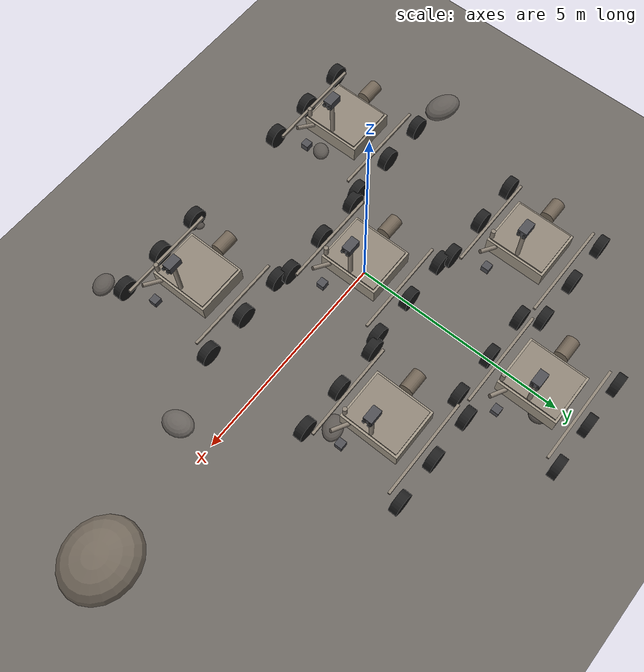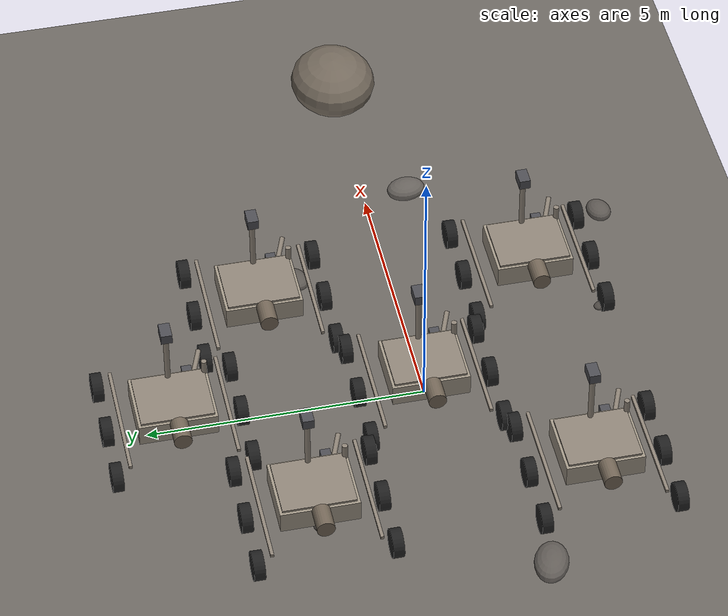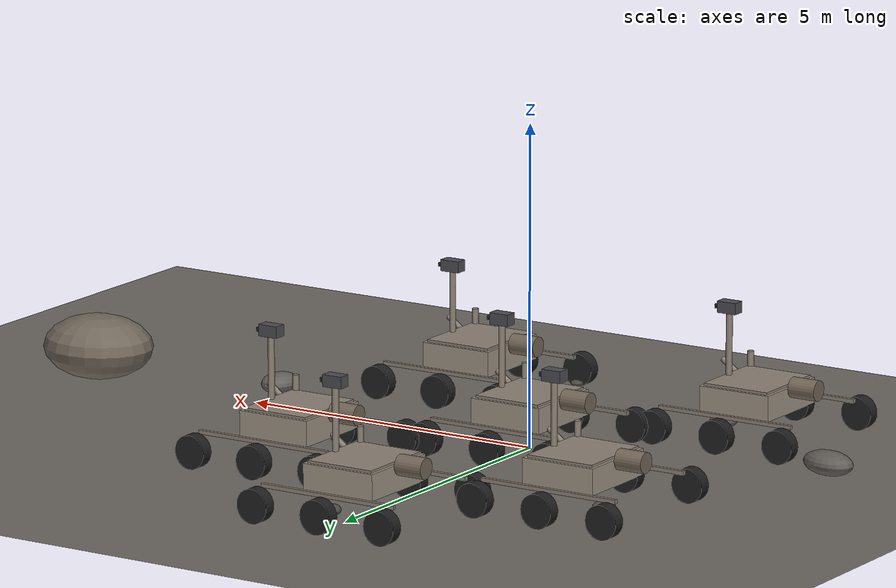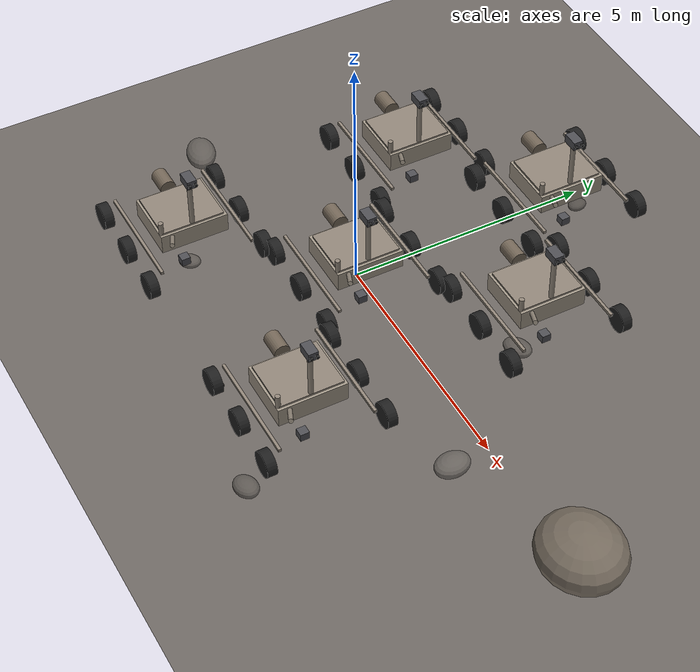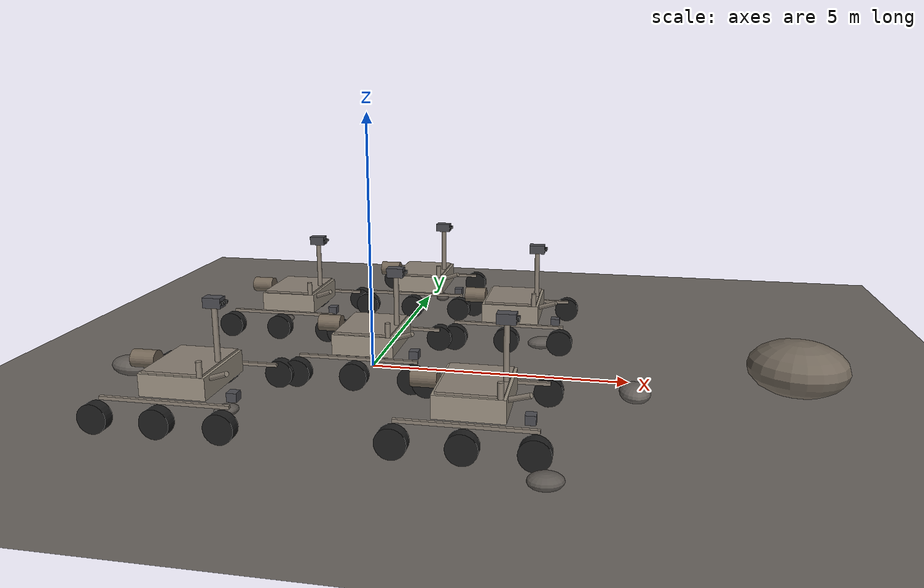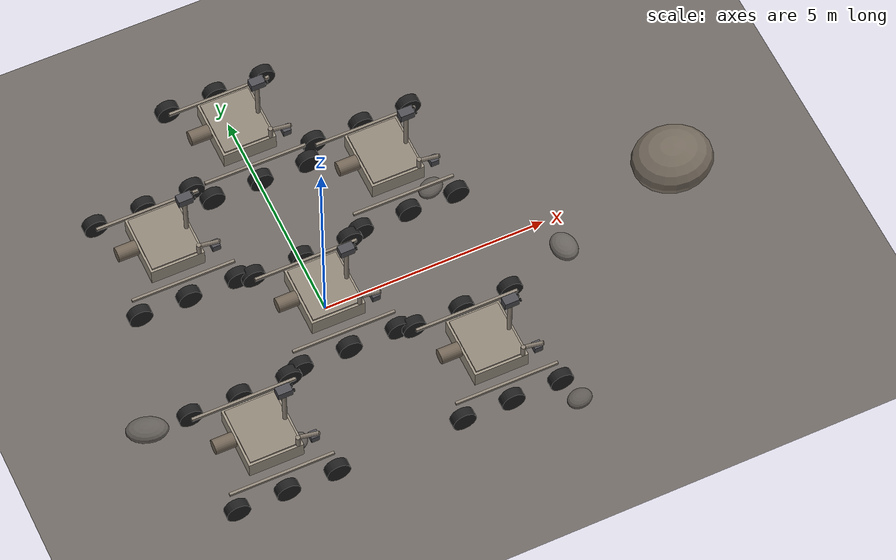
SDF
<?xml version="1.0"?>
<sdf version="1.9">
  <world name="moon">
    <!-- Physics. Plugin filenames are Fortress (ignition-gazebo*); on
         Harmonic these become gz-sim-*. Either is fine — Ignition keeps
         backward-compatible aliases. -->
    <plugin filename="ignition-gazebo-physics-system"          name="ignition::gazebo::systems::Physics"/>
    <plugin filename="ignition-gazebo-user-commands-system"    name="ignition::gazebo::systems::UserCommands"/>
    <plugin filename="ignition-gazebo-scene-broadcaster-system" name="ignition::gazebo::systems::SceneBroadcaster"/>
    <plugin filename="ignition-gazebo-contact-system"          name="ignition::gazebo::systems::Contact"/>

    <physics name="default" type="ignored">
      <max_step_size>0.004</max_step_size>
      <real_time_factor>1.0</real_time_factor>
    </physics>

    <!-- Lunar gravity -->
    <gravity>0 0 -1.622</gravity>

    <!-- Scene: deep space backdrop, low ambient (Moon has no atmosphere) -->
    <scene>
      <ambient>0.04 0.04 0.04 1</ambient>
      <background>0.0 0.0 0.0 1</background>
      <grid>false</grid>
      <origin_visual>false</origin_visual>
    </scene>

    <!-- Sun (single hard directional light, like real lunar surface) -->
    <light type="directional" name="sun">
      <cast_shadows>true</cast_shadows>
      <pose>0 0 100 0 0.55 -0.6</pose>
      <diffuse>1.0 0.98 0.92 1</diffuse>
      <specular>0.4 0.4 0.4 1</specular>
      <direction>-0.6 -0.4 -0.7</direction>
    </light>

    <!-- Ground plane: 200x200, Moon-gray regolith colour -->
    <model name="lunar_ground">
      <static>true</static>
      <link name="link">
        <collision name="collision">
          <geometry><plane><normal>0 0 1</normal><size>200 200</size></plane></geometry>
        </collision>
        <visual name="visual">
          <geometry><plane><normal>0 0 1</normal><size>200 200</size></plane></geometry>
          <material>
            <ambient>0.18 0.17 0.16 1</ambient>
            <diffuse>0.42 0.40 0.38 1</diffuse>
            <specular>0.05 0.05 0.05 1</specular>
          </material>
        </visual>
      </link>
    </model>

    <!-- Scattered rocks (ellipsoids, varying poses) -->
    <model name="rock_1">
      <static>true</static><pose>3.2 1.7 0.10 0 0 0.4</pose>
      <link name="l"><visual name="v"><geometry><ellipsoid><radii>0.30 0.22 0.12</radii></ellipsoid></geometry>
        <material><ambient>0.18 0.17 0.16 1</ambient><diffuse>0.36 0.34 0.32 1</diffuse></material></visual></link>
    </model>
    <model name="rock_2">
      <static>true</static><pose>-2.8 2.4 0.07 0 0 1.1</pose>
      <link name="l"><visual name="v"><geometry><ellipsoid><radii>0.18 0.14 0.08</radii></ellipsoid></geometry>
        <material><ambient>0.18 0.17 0.16 1</ambient><diffuse>0.34 0.32 0.30 1</diffuse></material></visual></link>
    </model>
    <model name="rock_3">
      <static>true</static><pose>-4.5 -1.2 0.16 0 0 -0.3</pose>
      <link name="l"><visual name="v"><geometry><ellipsoid><radii>0.45 0.30 0.18</radii></ellipsoid></geometry>
        <material><ambient>0.20 0.19 0.17 1</ambient><diffuse>0.38 0.36 0.34 1</diffuse></material></visual></link>
    </model>
    <model name="rock_4">
      <static>true</static><pose>1.4 -3.6 0.05 0 0 2.1</pose>
      <link name="l"><visual name="v"><geometry><ellipsoid><radii>0.12 0.10 0.05</radii></ellipsoid></geometry>
        <material><ambient>0.18 0.17 0.16 1</ambient><diffuse>0.30 0.28 0.26 1</diffuse></material></visual></link>
    </model>
    <model name="rock_5">
      <static>true</static><pose>-1.8 -2.7 0.09 0 0 0.8</pose>
      <link name="l"><visual name="v"><geometry><ellipsoid><radii>0.22 0.18 0.10</radii></ellipsoid></geometry>
        <material><ambient>0.19 0.18 0.16 1</ambient><diffuse>0.36 0.34 0.32 1</diffuse></material></visual></link>
    </model>
    <model name="rock_6">
      <static>true</static><pose>5.1 -0.8 0.14 0 0 1.7</pose>
      <link name="l"><visual name="v"><geometry><ellipsoid><radii>0.36 0.28 0.16</radii></ellipsoid></geometry>
        <material><ambient>0.20 0.19 0.17 1</ambient><diffuse>0.40 0.38 0.36 1</diffuse></material></visual></link>
    </model>
    <model name="rock_7">
      <static>true</static><pose>0.4 4.8 0.08 0 0 -1.4</pose>
      <link name="l"><visual name="v"><geometry><ellipsoid><radii>0.20 0.16 0.09</radii></ellipsoid></geometry>
        <material><ambient>0.17 0.16 0.15 1</ambient><diffuse>0.32 0.30 0.28 1</diffuse></material></visual></link>
    </model>
    <model name="rock_8">
      <static>true</static><pose>3.8 -4.2 0.11 0 0 0.2</pose>
      <link name="l"><visual name="v"><geometry><ellipsoid><radii>0.28 0.22 0.13</radii></ellipsoid></geometry>
        <material><ambient>0.18 0.17 0.16 1</ambient><diffuse>0.36 0.34 0.32 1</diffuse></material></visual></link>
    </model>

    <!-- Big obstacle rock placed directly in the rover's forward path.
         Rover spawns at origin pointing +x; a boulder at x=8 is hit
         if the rover drives forward at any reasonable speed. -->
    <model name="boulder">
      <static>true</static>
      <pose>8 0 0.50 0 0 0</pose>
      <link name="link">
        <collision name="c">
          <geometry><ellipsoid><radii>0.90 0.80 0.50</radii></ellipsoid></geometry>
        </collision>
        <visual name="v">
          <geometry><ellipsoid><radii>0.90 0.80 0.50</radii></ellipsoid></geometry>
          <material>
            <ambient>0.22 0.20 0.17 1</ambient>
            <diffuse>0.45 0.41 0.36 1</diffuse>
            <specular>0.05 0.05 0.05 1</specular>
          </material>
        </visual>
      </link>
    </model>

    <include>
      <uri>model://perseverance</uri>
      <name>perseverance</name>
      <pose>0 0 0 0 0 0</pose>
    </include>
    <include>
      <uri>model://perseverance</uri>
      <name>perseverance-02</name>
      <pose>2.5 2.5 0 0 0 0</pose>
    </include>
    <include>
      <uri>model://perseverance</uri>
      <name>perseverance-03</name>
      <pose>-2.5 2.5 0 0 0 0</pose>
    </include>
    <include>
      <uri>model://perseverance</uri>
      <name>perseverance-04</name>
      <pose>2.5 -2.5 0 0 0 0</pose>
    </include>
    <include>
      <uri>model://perseverance</uri>
      <name>perseverance-05</name>
      <pose>-2.5 -2.5 0 0 0 0</pose>
    </include>
    <include>
      <uri>model://perseverance</uri>
      <name>perseverance-06</name>
      <pose>0 4.5 0 0 0 0</pose>
    </include>
  </world>
</sdf>

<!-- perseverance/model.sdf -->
<sdf version="1.9">
  <model name="perseverance">

    <!-- ===== Body: every non-rotating piece is a visual on this link.
         Mass + inertia approximate the real rover's 899 kg minus the
         six wheels at ~30 kg each. ===== -->
    <link name="body">
      <pose>0 0 0.65 0 0 0</pose>
      <inertial>
        <mass>700</mass>
        <inertia>
          <ixx>120</ixx><iyy>140</iyy><izz>200</izz>
          <ixy>0</ixy><ixz>0</ixz><iyz>0</iyz>
        </inertia>
      </inertial>
      <collision name="deck_col">
        <geometry><box><size>1.20 1.40 0.40</size></box></geometry>
      </collision>

      <sensor name="bumper" type="contact">
        <update_rate>10</update_rate>
        <contact>
          <collision>deck_col</collision>
          <topic>/perseverance/contacts</topic>
        </contact>
      </sensor>

      <visual name="deck">
        <geometry><box><size>1.20 1.40 0.40</size></box></geometry>
        <material>
          <ambient>0.32 0.30 0.27 1</ambient>
          <diffuse>0.62 0.58 0.52 1</diffuse>
          <specular>0.30 0.30 0.30 1</specular>
        </material>
      </visual>
      <visual name="top_deck">
        <pose>0 0 0.22 0 0 0</pose>
        <geometry><box><size>1.10 1.30 0.04</size></box></geometry>
        <material><ambient>0.30 0.28 0.25 1</ambient><diffuse>0.55 0.51 0.46 1</diffuse></material>
      </visual>

      <!-- RTG -->
      <visual name="rtg">
        <pose>-0.85 0 0.20 0 1.5708 0</pose>
        <geometry><cylinder><radius>0.16</radius><length>0.45</length></cylinder></geometry>
        <material>
          <ambient>0.25 0.22 0.18 1</ambient>
          <diffuse>0.45 0.40 0.34 1</diffuse>
          <specular>0.25 0.25 0.25 1</specular>
        </material>
      </visual>

      <!-- Mast pole + camera head -->
      <visual name="mast_pole">
        <pose>0.50 0 0.65 0 0 0</pose>
        <geometry><cylinder><radius>0.05</radius><length>1.20</length></cylinder></geometry>
        <material><ambient>0.30 0.28 0.25 1</ambient><diffuse>0.55 0.51 0.46 1</diffuse></material>
      </visual>
      <visual name="mast_head">
        <pose>0.50 0 1.30 0 0 0</pose>
        <geometry><box><size>0.32 0.20 0.18</size></box></geometry>
        <material><ambient>0.20 0.20 0.22 1</ambient><diffuse>0.30 0.30 0.32 1</diffuse></material>
      </visual>
      <visual name="cam_left">
        <pose>0.68 0.06 1.30 0 1.5708 0</pose>
        <geometry><cylinder><radius>0.035</radius><length>0.06</length></cylinder></geometry>
        <material><ambient>0.05 0.05 0.05 1</ambient><diffuse>0.10 0.10 0.10 1</diffuse><specular>0.6 0.6 0.6 1</specular></material>
      </visual>
      <visual name="cam_right">
        <pose>0.68 -0.06 1.30 0 1.5708 0</pose>
        <geometry><cylinder><radius>0.035</radius><length>0.06</length></cylinder></geometry>
        <material><ambient>0.05 0.05 0.05 1</ambient><diffuse>0.10 0.10 0.10 1</diffuse><specular>0.6 0.6 0.6 1</specular></material>
      </visual>

      <!-- Stowed robotic arm -->
      <visual name="arm_seg_1">
        <pose>0.50 -0.65 0.20 0 0 -0.4</pose>
        <geometry><cylinder><radius>0.05</radius><length>0.55</length></cylinder></geometry>
        <material><ambient>0.30 0.28 0.25 1</ambient><diffuse>0.55 0.51 0.46 1</diffuse></material>
      </visual>
      <visual name="arm_seg_2">
        <pose>0.78 -0.55 0.20 0 1.2 -0.4</pose>
        <geometry><cylinder><radius>0.045</radius><length>0.45</length></cylinder></geometry>
        <material><ambient>0.30 0.28 0.25 1</ambient><diffuse>0.55 0.51 0.46 1</diffuse></material>
      </visual>
      <visual name="arm_turret">
        <pose>0.95 -0.40 -0.20 0 0 0</pose>
        <geometry><box><size>0.18 0.18 0.16</size></box></geometry>
        <material><ambient>0.20 0.20 0.22 1</ambient><diffuse>0.30 0.30 0.32 1</diffuse></material>
      </visual>

      <!-- Rocker rails (cosmetic) -->
      <visual name="rocker_l">
        <pose>0 0.95 -0.15 0 0 0</pose>
        <geometry><box><size>2.30 0.06 0.06</size></box></geometry>
        <material><ambient>0.30 0.28 0.25 1</ambient><diffuse>0.55 0.51 0.46 1</diffuse></material>
      </visual>
      <visual name="rocker_r">
        <pose>0 -0.95 -0.15 0 0 0</pose>
        <geometry><box><size>2.30 0.06 0.06</size></box></geometry>
        <material><ambient>0.30 0.28 0.25 1</ambient><diffuse>0.55 0.51 0.46 1</diffuse></material>
      </visual>
    </link>

    <link name="wheel_fl">
      <pose>1.10 1.20 0.26 0 0 0</pose>
      <inertial><mass>30</mass>
        <inertia><ixx>1.6</ixx><iyy>1.0</iyy><izz>1.6</izz></inertia>
      </inertial>
      <collision name="c"><pose>0 0 0 1.5708 0 0</pose>
        <geometry><cylinder><radius>0.26</radius><length>0.20</length></cylinder></geometry>
      </collision>
      <visual name="v"><pose>0 0 0 1.5708 0 0</pose>
        <geometry><cylinder><radius>0.26</radius><length>0.20</length></cylinder></geometry>
        <material><ambient>0.06 0.06 0.06 1</ambient><diffuse>0.12 0.12 0.12 1</diffuse></material>
      </visual>
    </link>
    <link name="wheel_ml">
      <pose>0.00 1.20 0.26 0 0 0</pose>
      <inertial><mass>30</mass>
        <inertia><ixx>1.6</ixx><iyy>1.0</iyy><izz>1.6</izz></inertia>
      </inertial>
      <collision name="c"><pose>0 0 0 1.5708 0 0</pose>
        <geometry><cylinder><radius>0.26</radius><length>0.20</length></cylinder></geometry>
      </collision>
      <visual name="v"><pose>0 0 0 1.5708 0 0</pose>
        <geometry><cylinder><radius>0.26</radius><length>0.20</length></cylinder></geometry>
        <material><ambient>0.06 0.06 0.06 1</ambient><diffuse>0.12 0.12 0.12 1</diffuse></material>
      </visual>
    </link>
    <link name="wheel_rl">
      <pose>-1.10 1.20 0.26 0 0 0</pose>
      <inertial><mass>30</mass>
        <inertia><ixx>1.6</ixx><iyy>1.0</iyy><izz>1.6</izz></inertia>
      </inertial>
      <collision name="c"><pose>0 0 0 1.5708 0 0</pose>
        <geometry><cylinder><radius>0.26</radius><length>0.20</length></cylinder></geometry>
      </collision>
      <visual name="v"><pose>0 0 0 1.5708 0 0</pose>
        <geometry><cylinder><radius>0.26</radius><length>0.20</length></cylinder></geometry>
        <material><ambient>0.06 0.06 0.06 1</ambient><diffuse>0.12 0.12 0.12 1</diffuse></material>
      </visual>
    </link>
    <link name="wheel_fr">
      <pose>1.10 -1.20 0.26 0 0 0</pose>
      <inertial><mass>30</mass>
        <inertia><ixx>1.6</ixx><iyy>1.0</iyy><izz>1.6</izz></inertia>
      </inertial>
      <collision name="c"><pose>0 0 0 1.5708 0 0</pose>
        <geometry><cylinder><radius>0.26</radius><length>0.20</length></cylinder></geometry>
      </collision>
      <visual name="v"><pose>0 0 0 1.5708 0 0</pose>
        <geometry><cylinder><radius>0.26</radius><length>0.20</length></cylinder></geometry>
        <material><ambient>0.06 0.06 0.06 1</ambient><diffuse>0.12 0.12 0.12 1</diffuse></material>
      </visual>
    </link>
    <link name="wheel_mr">
      <pose>0.00 -1.20 0.26 0 0 0</pose>
      <inertial><mass>30</mass>
        <inertia><ixx>1.6</ixx><iyy>1.0</iyy><izz>1.6</izz></inertia>
      </inertial>
      <collision name="c"><pose>0 0 0 1.5708 0 0</pose>
        <geometry><cylinder><radius>0.26</radius><length>0.20</length></cylinder></geometry>
      </collision>
      <visual name="v"><pose>0 0 0 1.5708 0 0</pose>
        <geometry><cylinder><radius>0.26</radius><length>0.20</length></cylinder></geometry>
        <material><ambient>0.06 0.06 0.06 1</ambient><diffuse>0.12 0.12 0.12 1</diffuse></material>
      </visual>
    </link>
    <link name="wheel_rr">
      <pose>-1.10 -1.20 0.26 0 0 0</pose>
      <inertial><mass>30</mass>
        <inertia><ixx>1.6</ixx><iyy>1.0</iyy><izz>1.6</izz></inertia>
      </inertial>
      <collision name="c"><pose>0 0 0 1.5708 0 0</pose>
        <geometry><cylinder><radius>0.26</radius><length>0.20</length></cylinder></geometry>
      </collision>
      <visual name="v"><pose>0 0 0 1.5708 0 0</pose>
        <geometry><cylinder><radius>0.26</radius><length>0.20</length></cylinder></geometry>
        <material><ambient>0.06 0.06 0.06 1</ambient><diffuse>0.12 0.12 0.12 1</diffuse></material>
      </visual>
    </link>

    <!-- ===== Six revolute joints. Axis 0,1,0 in the child link
         frame is the wheel's spin axis (along world Y). ===== -->
    <joint name="wheel_fl_joint" type="revolute">
      <parent>body</parent><child>wheel_fl</child>
      <axis><xyz>0 1 0</xyz></axis>
    </joint>
    <joint name="wheel_ml_joint" type="revolute">
      <parent>body</parent><child>wheel_ml</child>
      <axis><xyz>0 1 0</xyz></axis>
    </joint>
    <joint name="wheel_rl_joint" type="revolute">
      <parent>body</parent><child>wheel_rl</child>
      <axis><xyz>0 1 0</xyz></axis>
    </joint>
    <joint name="wheel_fr_joint" type="revolute">
      <parent>body</parent><child>wheel_fr</child>
      <axis><xyz>0 1 0</xyz></axis>
    </joint>
    <joint name="wheel_mr_joint" type="revolute">
      <parent>body</parent><child>wheel_mr</child>
      <axis><xyz>0 1 0</xyz></axis>
    </joint>
    <joint name="wheel_rr_joint" type="revolute">
      <parent>body</parent><child>wheel_rr</child>
      <axis><xyz>0 1 0</xyz></axis>
    </joint>

    <!-- ===== DiffDrive: groups all 3 left + all 3 right wheels.
         Topic /model/perseverance/cmd_vel; the entrypoint bridges
         that to ROS 2 /cmd_vel for moon.sdf. ===== -->
    <plugin filename="ignition-gazebo-diff-drive-system"
            name="ignition::gazebo::systems::DiffDrive">
      <left_joint>wheel_fl_joint</left_joint>
      <left_joint>wheel_ml_joint</left_joint>
      <left_joint>wheel_rl_joint</left_joint>
      <right_joint>wheel_fr_joint</right_joint>
      <right_joint>wheel_mr_joint</right_joint>
      <right_joint>wheel_rr_joint</right_joint>
      <wheel_separation>2.40</wheel_separation>
      <wheel_radius>0.26</wheel_radius>
      <topic>/model/perseverance/cmd_vel</topic>
      <odom_publish_frequency>20</odom_publish_frequency>
      <frame_id>perseverance/odom</frame_id>
      <child_frame_id>perseverance/base_link</child_frame_id>
      <max_linear_acceleration>2</max_linear_acceleration>
      <max_angular_acceleration>3</max_angular_acceleration>
    </plugin>
  </model>
</sdf>
